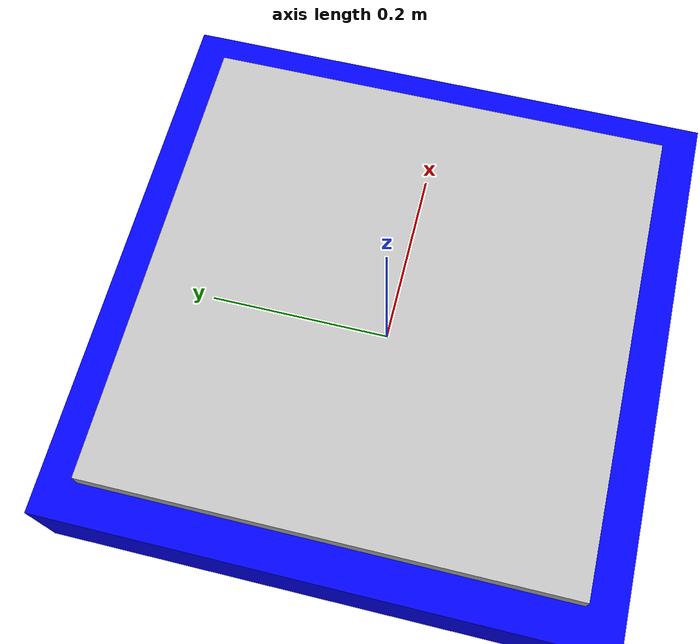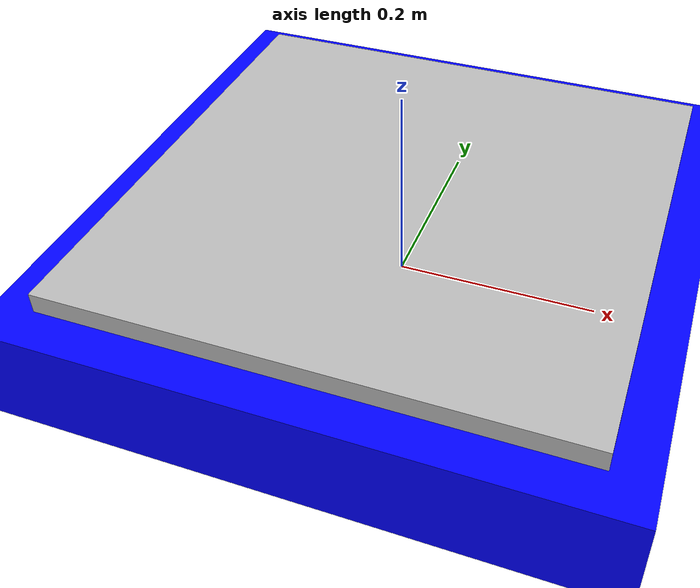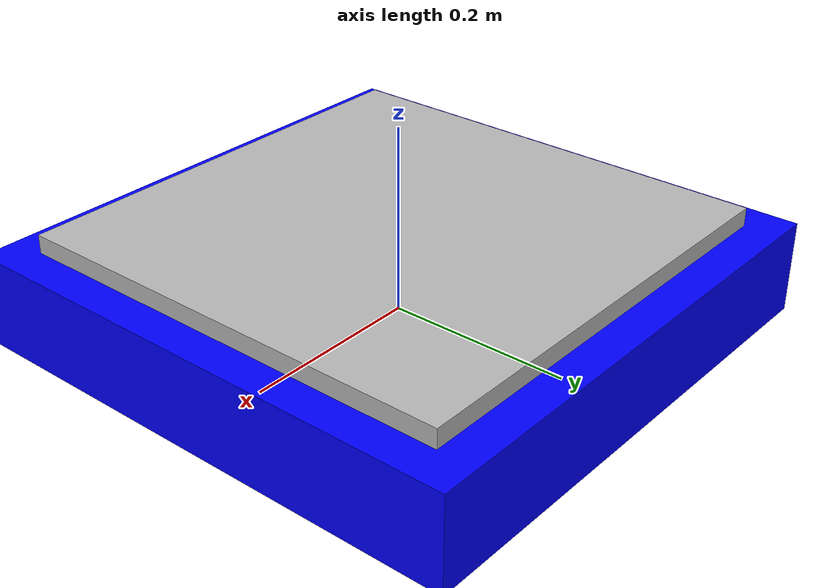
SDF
<?xml version="1.0"?>
<sdf version="1.5">
  <world name="base_land_world">
    <include>
      <uri>model://ground_plane</uri>
    </include>
    <include>
      <uri>model://sun</uri>
    </include>
    <include>
      <!-- DRONEPONTOS -->
      <static>true</static>
      <uri>model://base_land</uri>
      <name>base_land</name>
      <pose>0 0 0 0 0 0</pose>
    </include>
  </world>
</sdf>

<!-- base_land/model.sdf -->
<sdf version="1.6">
  <model name="base_land">
    <static>true</static>
    <link name="base_land_link">
      <visual name="visual_base_land">
        <cast_shadows>true</cast_shadows>
        <geometry>
          <mesh>
            <uri>model://base_land/meshes/Plane.dae</uri>
          </mesh>
        </geometry>
        <material>
          <script>
            <uri>file://base_land/materials/scripts</uri>
            <uri>file://base_land/materials/textures</uri>
            <name>base_land</name>
          </script>
        </material>
      </visual>
      <collision name="collision_base_land">
        <geometry>
          <mesh>
            <uri>model://base_land/meshes/Plane.dae</uri>
          </mesh>
        </geometry>
      </collision>
    </link>
    <link name="sea_plane_link">
      <collision name="sea_plane_collision">
        <pose frame=''>0 0 0.03 0 -0 0</pose>
        <geometry>
          <plane>
            <normal>0 0 1</normal>
            <size>100 100</size>
          </plane>
        </geometry>
      </collision>
      <visual name="sea_plane_visual">
        <pose frame=''>0 0 0.03 0 -0 0</pose>
        <geometry>
          <plane>
            <normal>0 0 1</normal>
            <size>100 100</size>
          </plane>
        </geometry>
        <material>
          <script>
            <uri>file://media/materials/scripts/gazebo.material</uri>
            <name>Gazebo/Grey</name>
          </script>
          <ambient>0 0 1 1</ambient>
        </material>
        <meta>
          <layer>0</layer>
        </meta>
      </visual>
    </link>
  </model>
</sdf>
